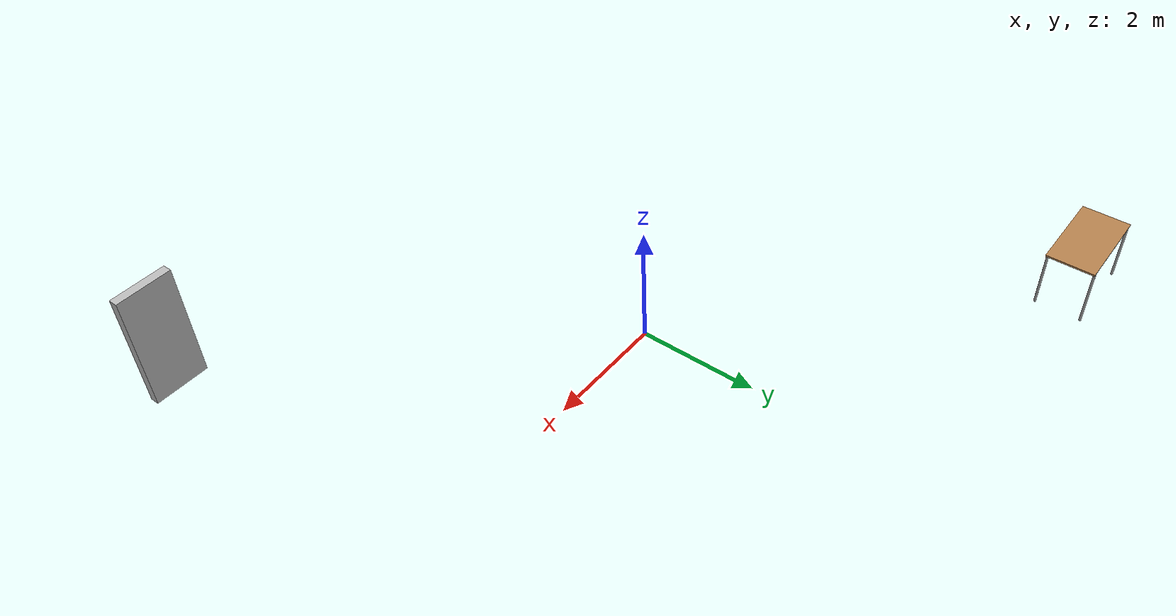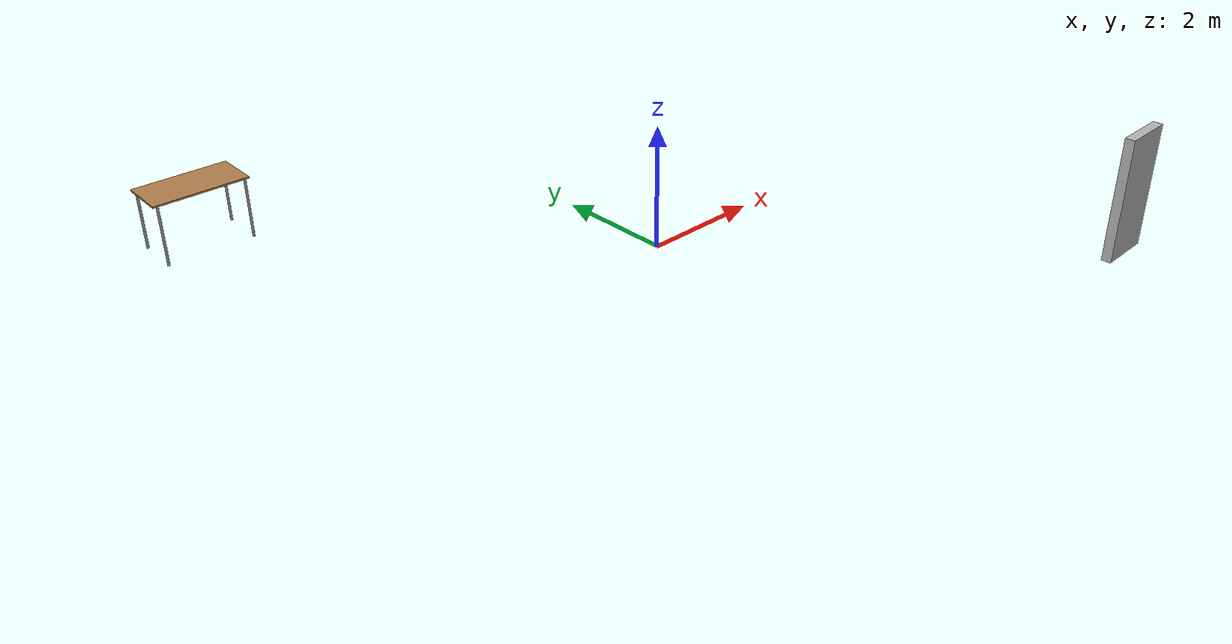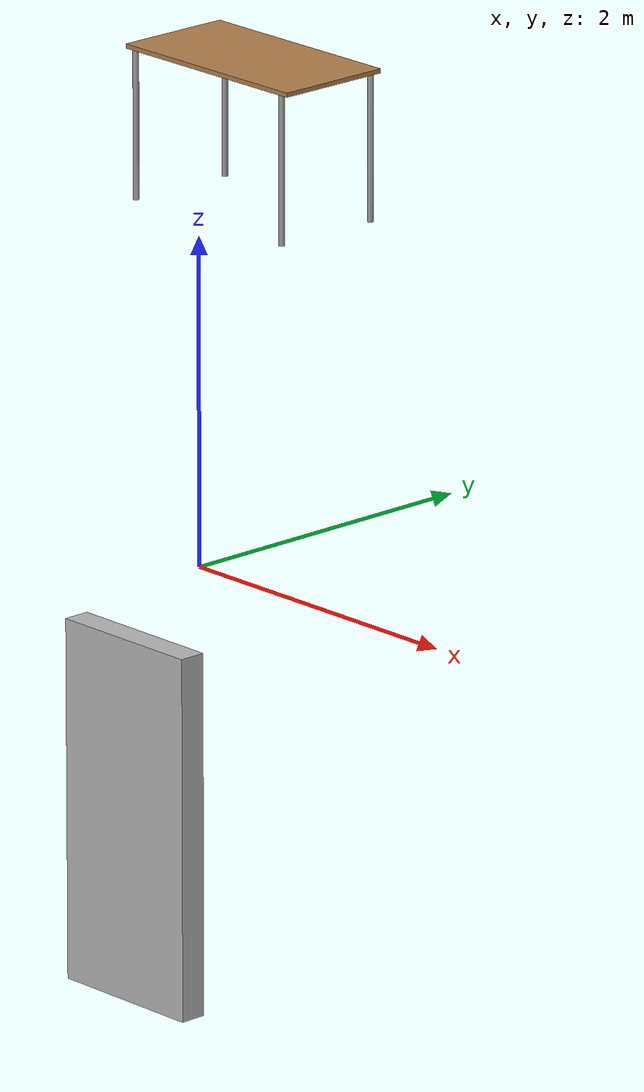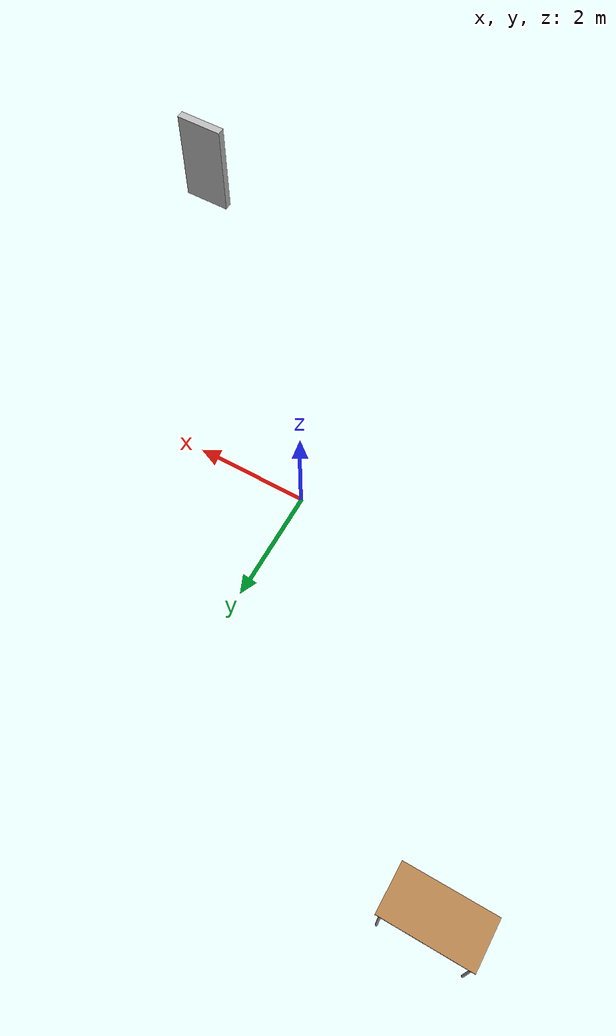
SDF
<?xml version="1.0"?>
<sdf version="1.5">
	<world name="default">

		<include>
			<uri>model://door</uri>
			<pose> 5.0 -5.0 0 0 0 0 </pose>
		</include>

		<include>
			<uri>model://table</uri>
			<pose> -5.0 5.0 0 0 0 0 </pose>
		</include>

	</world>
</sdf>

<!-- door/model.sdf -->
<sdf version='1.6'>
  <model name='door'>
    <link name='link_0'>
         <visual name='visual'>
        <pose frame=''>0 0 1 0 -0 0</pose>
        <geometry>
          <box>
            <size>0.9 0.15 2</size>
          </box>
        </geometry>
          	<material>
          <script>
            <uri>model://door/materials/scripts</uri>
            <uri>model://door/materials/textures</uri>
            <name>door</name>
          </script>
        </material>
        <cast_shadows>1</cast_shadows>
        <transparency>0</transparency>
      </visual>
      <collision name='collision'>
        <laser_retro>0</laser_retro>
        <max_contacts>10</max_contacts>
        <pose frame=''>0 0 1 0 -0 0</pose>
        <geometry>
          <box>
            <size>0.9 0.15 2</size>
          </box>
        </geometry>

      </collision>
    </link>
    <static>1</static>
    <allow_auto_disable>1</allow_auto_disable>
  </model>
</sdf>

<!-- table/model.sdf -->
<sdf version="1.5">
  <model name="table">
    <static>true</static>
    <link name="link">
      <collision name="surface">
        <pose>0 0 1.0 0 0 0</pose>
        <geometry>
          <box>
            <size>1.5 0.8 0.03</size>
          </box>
        </geometry>
        <surface>
          <friction>
            <ode>
              <mu>0.6</mu>
              <mu2>0.6</mu2>
            </ode>
          </friction>
        </surface>
      </collision>
      <visual name="visual1">
        <pose>0 0 1.0 0 0 0</pose>
        <geometry>
          <box>
            <size>1.5 0.8 0.03</size>
          </box>
        </geometry>
        <material>
          <script>
            <uri>model://media/materials/scripts/gazebo.material</uri>
            <name>Gazebo/Wood</name>
          </script>
        </material>
      </visual>
      <collision name="front_left_leg">
        <pose>0.68 0.38 0.5 0 0 0</pose>
        <geometry>
          <cylinder>
            <radius>0.02</radius>
            <length>1.0</length>
          </cylinder>
        </geometry>
      </collision>
      <visual name="front_left_leg">
        <pose>0.68 0.38 0.5 0 0 0</pose>
        <geometry>
          <cylinder>
            <radius>0.02</radius>
            <length>1.0</length>
          </cylinder>
        </geometry>
        <material>
          <script>
            <uri>model://media/materials/scripts/gazebo.material</uri>
            <name>Gazebo/Grey</name>
          </script>
        </material>
      </visual>
      <collision name="front_right_leg">
        <pose>0.68 -0.38 0.5 0 0 0</pose>
        <geometry>
          <cylinder>
            <radius>0.02</radius>
            <length>1.0</length>
          </cylinder>
        </geometry>
      </collision>
      <visual name="front_right_leg">
        <pose>0.68 -0.38 0.5 0 0 0</pose>
        <geometry>
          <cylinder>
            <radius>0.02</radius>
            <length>1.0</length>
          </cylinder>
        </geometry>
        <material>
          <script>
            <uri>model://media/materials/scripts/gazebo.material</uri>
            <name>Gazebo/Grey</name>
          </script>
        </material>
      </visual>
      <collision name="back_right_leg">
        <pose>-0.68 -0.38 0.5 0 0 0</pose>
        <geometry>
          <cylinder>
            <radius>0.02</radius>
            <length>1.0</length>
          </cylinder>
        </geometry>
      </collision>
      <visual name="back_right_leg">
        <pose>-0.68 -0.38 0.5 0 0 0</pose>
        <geometry>
          <cylinder>
            <radius>0.02</radius>
            <length>1.0</length>
          </cylinder>
        </geometry>
        <material>
          <script>
            <uri>model://media/materials/scripts/gazebo.material</uri>
            <name>Gazebo/Grey</name>
          </script>
        </material>
      </visual>
      <collision name="back_left_leg">
        <pose>-0.68 0.38 0.5 0 0 0</pose>
        <geometry>
          <cylinder>
            <radius>0.02</radius>
            <length>1.0</length>
          </cylinder>
        </geometry>
      </collision>
      <visual name="back_left_leg">
        <pose>-0.68 0.38 0.5 0 0 0</pose>
        <geometry>
          <cylinder>
            <radius>0.02</radius>
            <length>1.0</length>
          </cylinder>
        </geometry>
        <material>
          <script>
            <uri>model://media/materials/scripts/gazebo.material</uri>
            <name>Gazebo/Grey</name>
          </script>
        </material>
      </visual>
    </link>
  </model>
</sdf>
